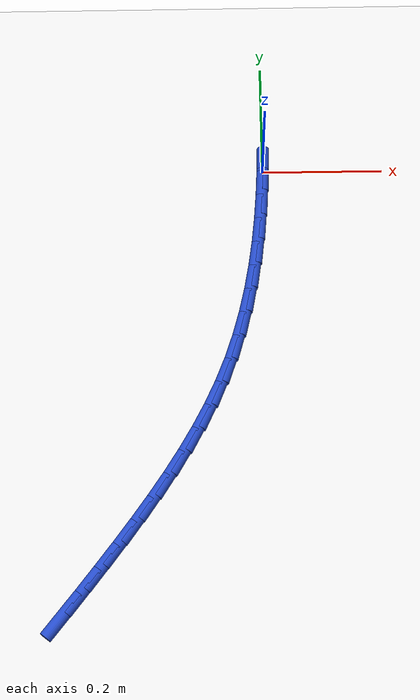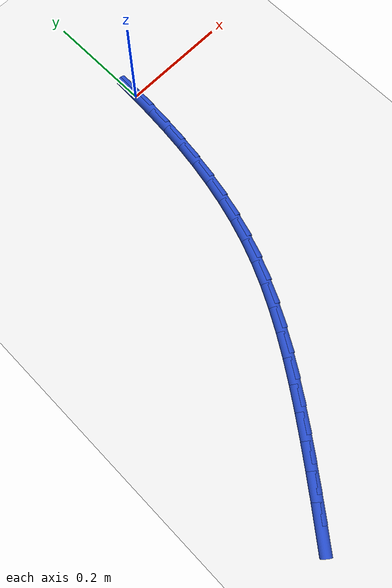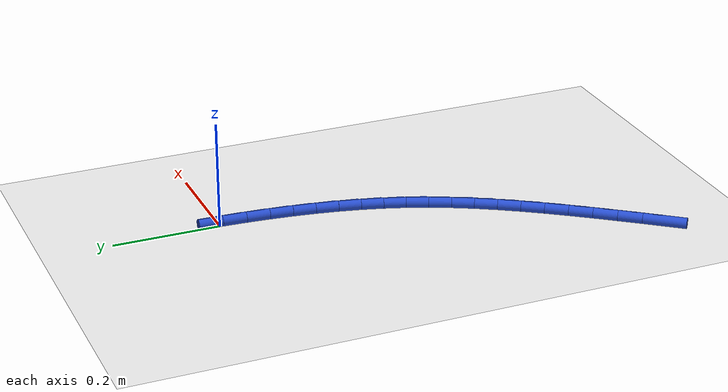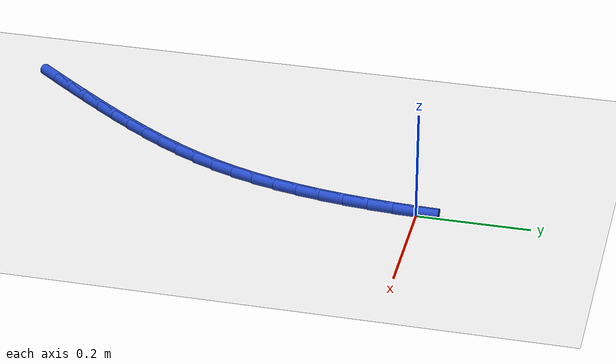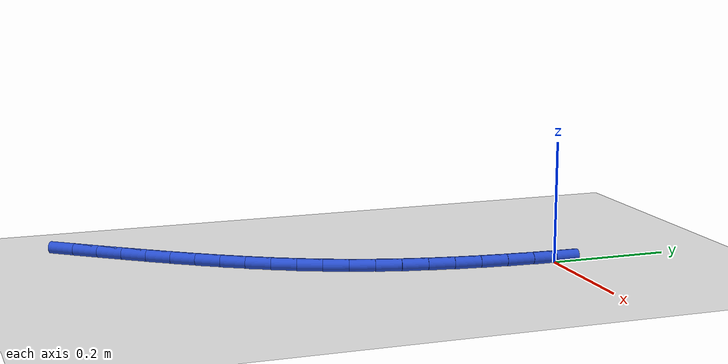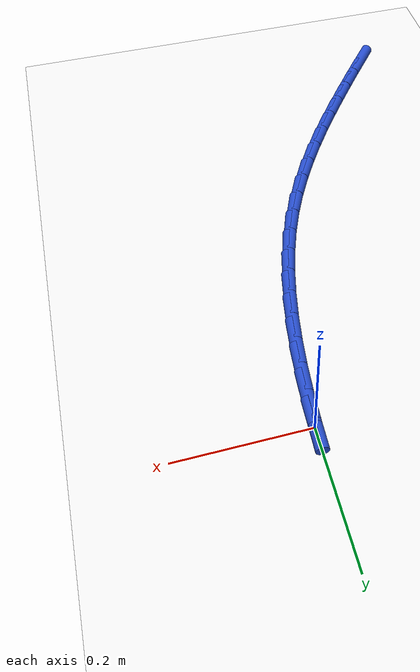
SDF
<sdf version="1.6">
 <world name="default">
  <model name="ground_plane">
   <static>1</static>
   <link name="link">
    <collision name="collision">
     <geometry><plane><normal>0 0 1</normal><size>100 100</size></plane></geometry>
     <surface><friction><ode><mu>100</mu><mu2>50</mu2></ode></friction></surface>
    </collision>
    <visual name="visual">
     <cast_shadows>0</cast_shadows>
     <geometry><plane><normal>0 0 1</normal><size>100 100</size></plane></geometry>
     <material>
      <script><uri>file://media/materials/scripts/gazebo.material</uri><name>Gazebo/WhiteGlow</name></script>
     </material>
    </visual>
   </link>
  </model>
  <model name="line">
   <link name="link_0">
    <pose>8.673617379884035e-18 -1.3877787807814457e-17 0.01 0 1.57 1.5404411804849696</pose>
    <collision name="collision">
     <geometry><cylinder><radius>0.01</radius><length>0.08</length></cylinder></geometry>
    </collision>
    <visual name="visual">
     <material>
      <script><name>Gazebo/Blue</name><uri>file://media/materials/scripts/gazebo.material</uri></script>
     </material>
     <geometry><cylinder><radius>0.01</radius><length>0.08</length></cylinder></geometry>
    </visual>
   </link>
   <link name="link_151">
    <pose>-0.3133495244311954 -0.740910035677709 0.01 0 1.57 0.903553381325979</pose>
    <collision name="collision">
     <geometry><cylinder><radius>0.01</radius><length>0.08</length></cylinder></geometry>
    </collision>
    <visual name="visual">
     <material>
      <script><name>Gazebo/Blue</name><uri>file://media/materials/scripts/gazebo.material</uri></script>
     </material>
     <geometry><cylinder><radius>0.01</radius><length>0.08</length></cylinder></geometry>
    </visual>
   </link>
   <link name="link_152">
    <pose>-0.2851723083011895 -0.7051419967990231 0.01 0 1.57 0.9157996924232022</pose>
    <collision name="collision">
     <geometry><cylinder><radius>0.01</radius><length>0.08</length></cylinder></geometry>
    </collision>
    <visual name="visual">
     <material>
      <script><name>Gazebo/Blue</name><uri>file://media/materials/scripts/gazebo.material</uri></script>
     </material>
     <geometry><cylinder><radius>0.01</radius><length>0.08</length></cylinder></geometry>
    </visual>
   </link>
   <link name="link_153">
    <pose>-0.2576114223089099 -0.6692609754605213 0.01 0 1.57 0.924828174006451</pose>
    <collision name="collision">
     <geometry><cylinder><radius>0.01</radius><length>0.08</length></cylinder></geometry>
    </collision>
    <visual name="visual">
     <material>
      <script><name>Gazebo/Blue</name><uri>file://media/materials/scripts/gazebo.material</uri></script>
     </material>
     <geometry><cylinder><radius>0.01</radius><length>0.08</length></cylinder></geometry>
    </visual>
   </link>
   <link name="link_154">
    <pose>-0.23066962390399917 -0.6335226020818782 0.01 0 1.57 0.9379694667672716</pose>
    <collision name="collision">
     <geometry><cylinder><radius>0.01</radius><length>0.08</length></cylinder></geometry>
    </collision>
    <visual name="visual">
     <material>
      <script><name>Gazebo/Blue</name><uri>file://media/materials/scripts/gazebo.material</uri></script>
     </material>
     <geometry><cylinder><radius>0.01</radius><length>0.08</length></cylinder></geometry>
    </visual>
   </link>
   <link name="link_155">
    <pose>-0.20450881120579856 -0.5978546027777198 0.01 0 1.57 0.9566560039641601</pose>
    <collision name="collision">
     <geometry><cylinder><radius>0.01</radius><length>0.08</length></cylinder></geometry>
    </collision>
    <visual name="visual">
     <material>
      <script><name>Gazebo/Blue</name><uri>file://media/materials/scripts/gazebo.material</uri></script>
     </material>
     <geometry><cylinder><radius>0.01</radius><length>0.08</length></cylinder></geometry>
    </visual>
   </link>
   <link name="link_156">
    <pose>-0.17931823728624233 -0.5621283396500267 0.01 0 1.57 0.9810805434932982</pose>
    <collision name="collision">
     <geometry><cylinder><radius>0.01</radius><length>0.08</length></cylinder></geometry>
    </collision>
    <visual name="visual">
     <material>
      <script><name>Gazebo/Blue</name><uri>file://media/materials/scripts/gazebo.material</uri></script>
     </material>
     <geometry><cylinder><radius>0.01</radius><length>0.08</length></cylinder></geometry>
    </visual>
   </link>
   <link name="link_157">
    <pose>-0.15528715521726458 -0.5262151748007785 0.01 0 1.57 1.011415408112006</pose>
    <collision name="collision">
     <geometry><cylinder><radius>0.01</radius><length>0.08</length></cylinder></geometry>
    </collision>
    <visual name="visual">
     <material>
      <script><name>Gazebo/Blue</name><uri>file://media/materials/scripts/gazebo.material</uri></script>
     </material>
     <geometry><cylinder><radius>0.01</radius><length>0.08</length></cylinder></geometry>
    </visual>
   </link>
   <link name="link_158">
    <pose>-0.13260481807079924 -0.4899864703319553 0.01 0 1.57 1.047785906249948</pose>
    <collision name="collision">
     <geometry><cylinder><radius>0.01</radius><length>0.08</length></cylinder></geometry>
    </collision>
    <visual name="visual">
     <material>
      <script><name>Gazebo/Blue</name><uri>file://media/materials/scripts/gazebo.material</uri></script>
     </material>
     <geometry><cylinder><radius>0.01</radius><length>0.08</length></cylinder></geometry>
    </visual>
   </link>
   <link name="link_159">
    <pose>-0.11146047891878128 -0.4533135883455384 0.01 0 1.57 1.090235152095613</pose>
    <collision name="collision">
     <geometry><cylinder><radius>0.01</radius><length>0.08</length></cylinder></geometry>
    </collision>
    <visual name="visual">
     <material>
      <script><name>Gazebo/Blue</name><uri>file://media/materials/scripts/gazebo.material</uri></script>
     </material>
     <geometry><cylinder><radius>0.01</radius><length>0.08</length></cylinder></geometry>
    </visual>
   </link>
   <link name="link_160">
    <pose>-0.09204339083314454 -0.41606789094350766 0.01 0 1.57 1.1386815616705634</pose>
    <collision name="collision">
     <geometry><cylinder><radius>0.01</radius><length>0.08</length></cylinder></geometry>
    </collision>
    <visual name="visual">
     <material>
      <script><name>Gazebo/Blue</name><uri>file://media/materials/scripts/gazebo.material</uri></script>
     </material>
     <geometry><cylinder><radius>0.01</radius><length>0.08</length></cylinder></geometry>
    </visual>
   </link>
   <link name="link_161">
    <pose>-0.07454280688582321 -0.3781207402278433 0.01 0 1.57 1.1926152418440346</pose>
    <collision name="collision">
     <geometry><cylinder><radius>0.01</radius><length>0.08</length></cylinder></geometry>
    </collision>
    <visual name="visual">
     <material>
      <script><name>Gazebo/Blue</name><uri>file://media/materials/scripts/gazebo.material</uri></script>
     </material>
     <geometry><cylinder><radius>0.01</radius><length>0.08</length></cylinder></geometry>
    </visual>
   </link>
   <link name="link_162">
    <pose>-0.05913822701061784 -0.33934807548669155 0.01 0 1.57 1.2471066811109486</pose>
    <collision name="collision">
     <geometry><cylinder><radius>0.01</radius><length>0.08</length></cylinder></geometry>
    </collision>
    <visual name="visual">
     <material>
      <script><name>Gazebo/Blue</name><uri>file://media/materials/scripts/gazebo.material</uri></script>
     </material>
     <geometry><cylinder><radius>0.01</radius><length>0.08</length></cylinder></geometry>
    </visual>
   </link>
   <link name="link_163">
    <pose>-0.045838681506411474 -0.2997058380797402 0.01 0 1.57 1.29792677764459</pose>
    <collision name="collision">
     <geometry><cylinder><radius>0.01</radius><length>0.08</length></cylinder></geometry>
    </collision>
    <visual name="visual">
     <material>
      <script><name>Gazebo/Blue</name><uri>file://media/materials/scripts/gazebo.material</uri></script>
     </material>
     <geometry><cylinder><radius>0.01</radius><length>0.08</length></cylinder></geometry>
    </visual>
   </link>
   <link name="link_164">
    <pose>-0.03450817136703466 -0.2592180321911465 0.01 0 1.57 1.3446948054907981</pose>
    <collision name="collision">
     <geometry><cylinder><radius>0.01</radius><length>0.08</length></cylinder></geometry>
    </collision>
    <visual name="visual">
     <material>
      <script><name>Gazebo/Blue</name><uri>file://media/materials/scripts/gazebo.material</uri></script>
     </material>
     <geometry><cylinder><radius>0.01</radius><length>0.08</length></cylinder></geometry>
    </visual>
   </link>
   <link name="link_165">
    <pose>-0.02500607421405516 -0.2179108317718905 0.01 0 1.57 1.3872737228892735</pose>
    <collision name="collision">
     <geometry><cylinder><radius>0.01</radius><length>0.08</length></cylinder></geometry>
    </collision>
    <visual name="visual">
     <material>
      <script><name>Gazebo/Blue</name><uri>file://media/materials/scripts/gazebo.material</uri></script>
     </material>
     <geometry><cylinder><radius>0.01</radius><length>0.08</length></cylinder></geometry>
    </visual>
   </link>
   <link name="link_166">
    <pose>-0.017191767669041066 -0.17581041077295295 0.01 0 1.57 1.4256267680214416</pose>
    <collision name="collision">
     <geometry><cylinder><radius>0.01</radius><length>0.08</length></cylinder></geometry>
    </collision>
    <visual name="visual">
     <material>
      <script><name>Gazebo/Blue</name><uri>file://media/materials/scripts/gazebo.material</uri></script>
     </material>
     <geometry><cylinder><radius>0.01</radius><length>0.08</length></cylinder></geometry>
    </visual>
   </link>
   <link name="link_167">
    <pose>-0.010924629353560446 -0.13294294314531452 0.01 0 1.57 1.459794329442906</pose>
    <collision name="collision">
     <geometry><cylinder><radius>0.01</radius><length>0.08</length></cylinder></geometry>
    </collision>
    <visual name="visual">
     <material>
      <script><name>Gazebo/Blue</name><uri>file://media/materials/scripts/gazebo.material</uri></script>
     </material>
     <geometry><cylinder><radius>0.01</radius><length>0.08</length></cylinder></geometry>
    </visual>
   </link>
   <link name="link_168">
    <pose>-0.006064036889181274 -0.0893346028399551 0.01 0 1.57 1.4898718515239464</pose>
    <collision name="collision">
     <geometry><cylinder><radius>0.01</radius><length>0.08</length></cylinder></geometry>
    </collision>
    <visual name="visual">
     <material>
      <script><name>Gazebo/Blue</name><uri>file://media/materials/scripts/gazebo.material</uri></script>
     </material>
     <geometry><cylinder><radius>0.01</radius><length>0.08</length></cylinder></geometry>
    </visual>
   </link>
   <link name="link_169">
    <pose>-0.002469367897471807 -0.04501156380785704 0.01 0 1.57 1.5159905213617597</pose>
    <collision name="collision">
     <geometry><cylinder><radius>0.01</radius><length>0.08</length></cylinder></geometry>
    </collision>
    <visual name="visual">
     <material>
      <script><name>Gazebo/Blue</name><uri>file://media/materials/scripts/gazebo.material</uri></script>
     </material>
     <geometry><cylinder><radius>0.01</radius><length>0.08</length></cylinder></geometry>
    </visual>
   </link>
   <link name="link_170">
    <pose>-1.1058862159352145e-17 -2.636779683484747e-16 0.01 0 1.57 1.5383014861740947</pose>
    <collision name="collision">
     <geometry><cylinder><radius>0.01</radius><length>0.08</length></cylinder></geometry>
    </collision>
    <visual name="visual">
     <material>
      <script><name>Gazebo/Blue</name><uri>file://media/materials/scripts/gazebo.material</uri></script>
     </material>
     <geometry><cylinder><radius>0.01</radius><length>0.08</length></cylinder></geometry>
    </visual>
   </link>
  </model>
 </world>
</sdf>
